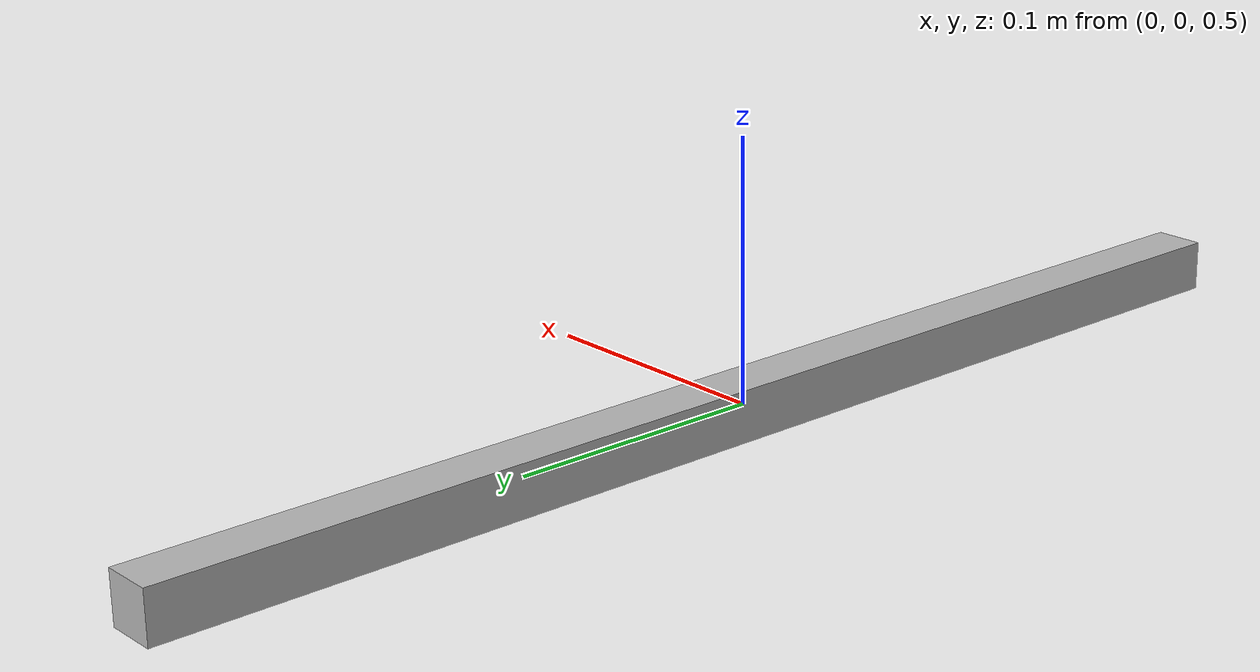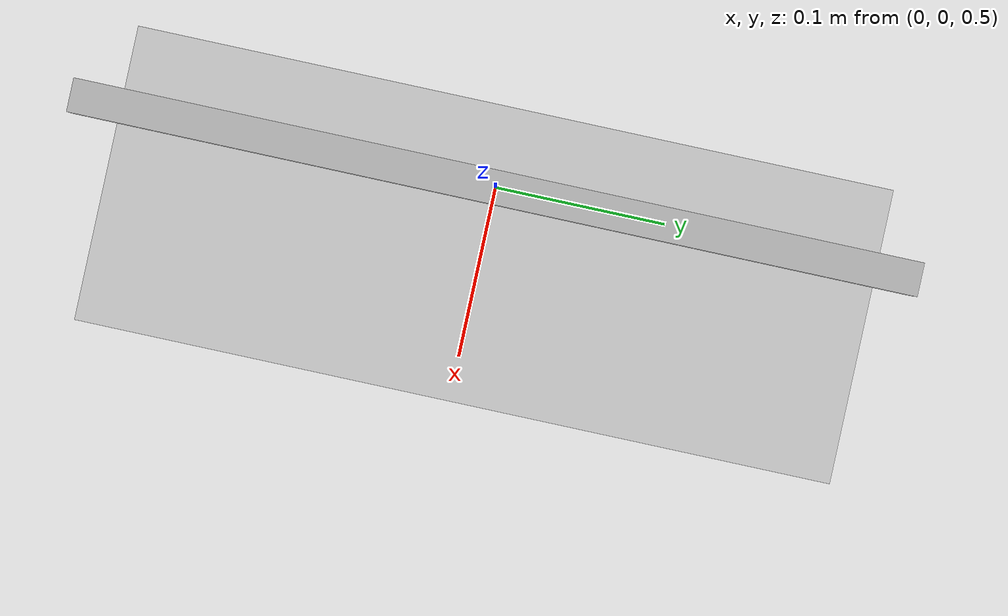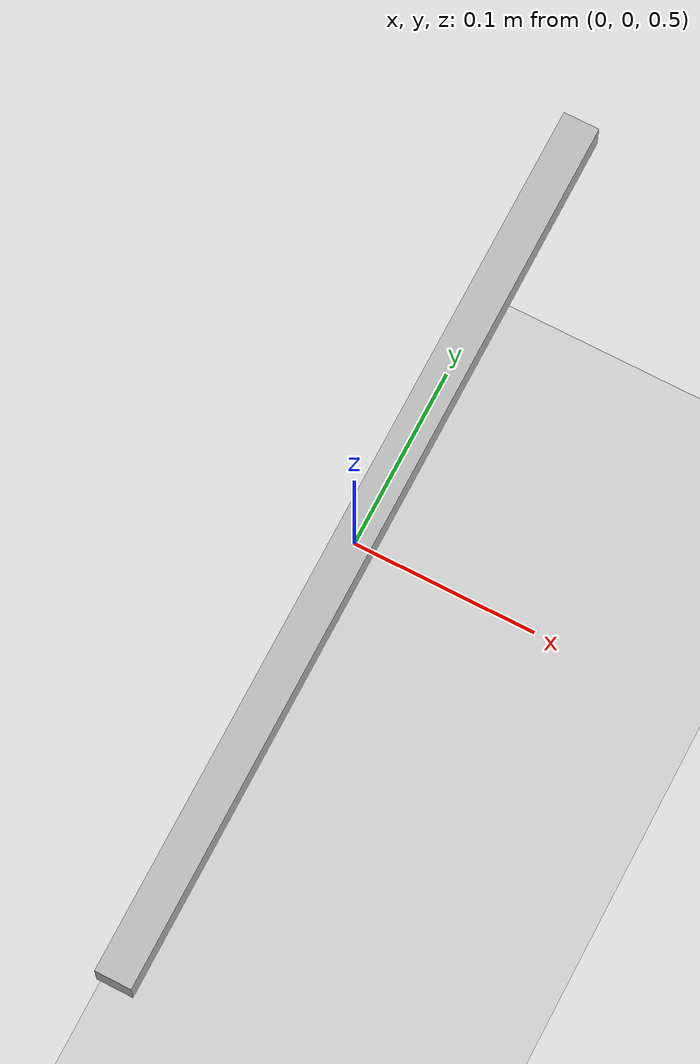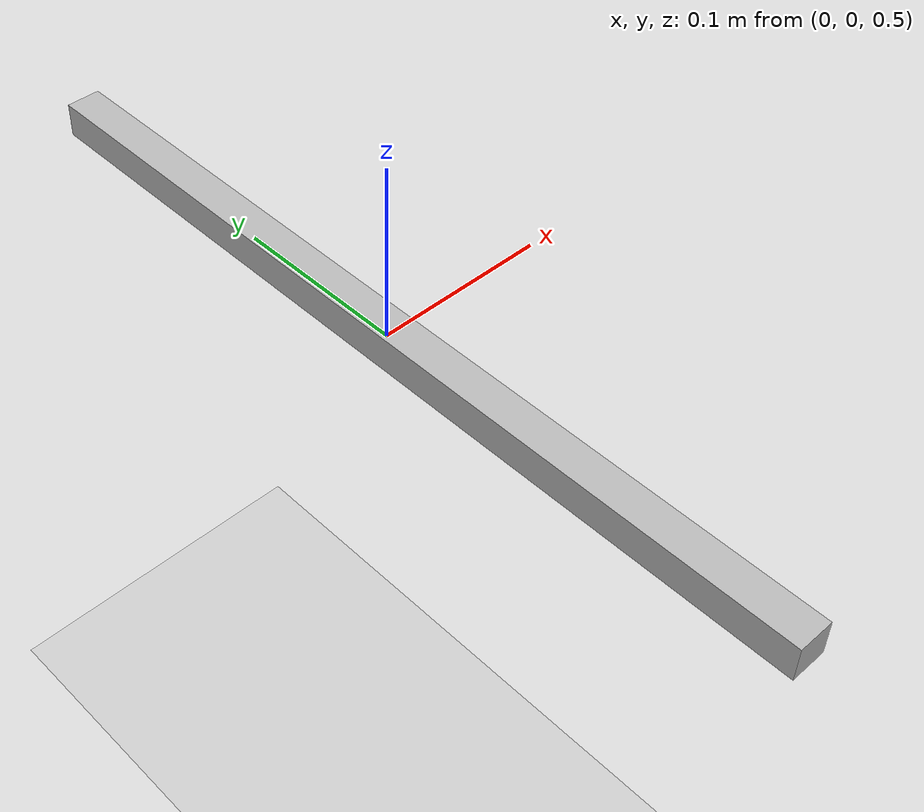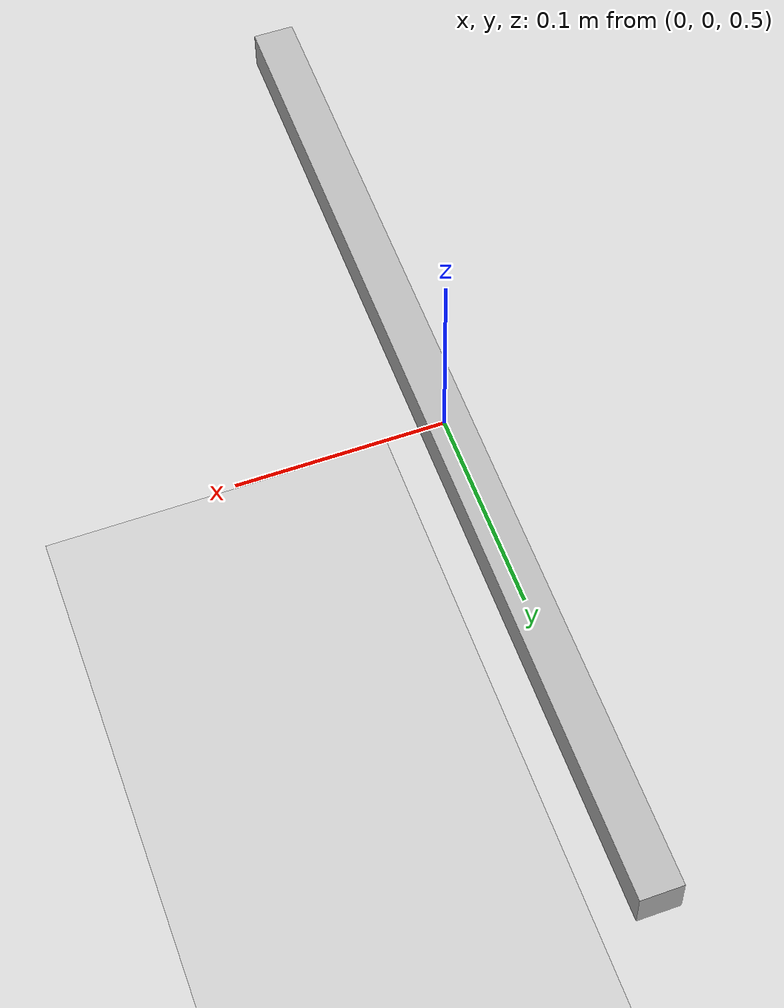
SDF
<?xml version="1.0" ?>
<sdf version="1.4">
  <world name="uas_lab">
    <include>
      <uri>model://ground_plane</uri>
    </include>
    <include>
      <uri>model://sun</uri>
    </include>
    <include>
      <uri>model://stick</uri>
    </include>
  </world>
</sdf>

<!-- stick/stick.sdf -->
<sdf version="1.4">
  <model name="stick">
    <pose>0 0 0.5 0 0 0</pose>
    <link name="stick_link">
      <gravity>false</gravity>
      <inertial>
        <mass>1.0</mass>
        <inertia>
          <ixx>1.0</ixx>
          <ixy>0.0</ixy>
          <ixz>0.0</ixz>
          <iyy>1.0</iyy>
          <iyz>0.0</iyz>
          <izz>1.0</izz>
        </inertia>
      </inertial>
      <collision name="collision">
        <geometry>
          <box>
            <size>0.02 0.5 0.02</size>
          </box>
        </geometry>
      </collision>
      <visual name="visual">
        <geometry>
          <box>
            <size>0.02 0.5 0.02</size>
          </box>
        </geometry>
      </visual>
    </link>

    <plugin name="ros_transform" filename="libros_transform.so">
      <targetLink>stick_link</targetLink>
      <transformTopic>/vicon/TestStick/TestStick</transformTopic>
    </plugin>

  </model>
</sdf>
